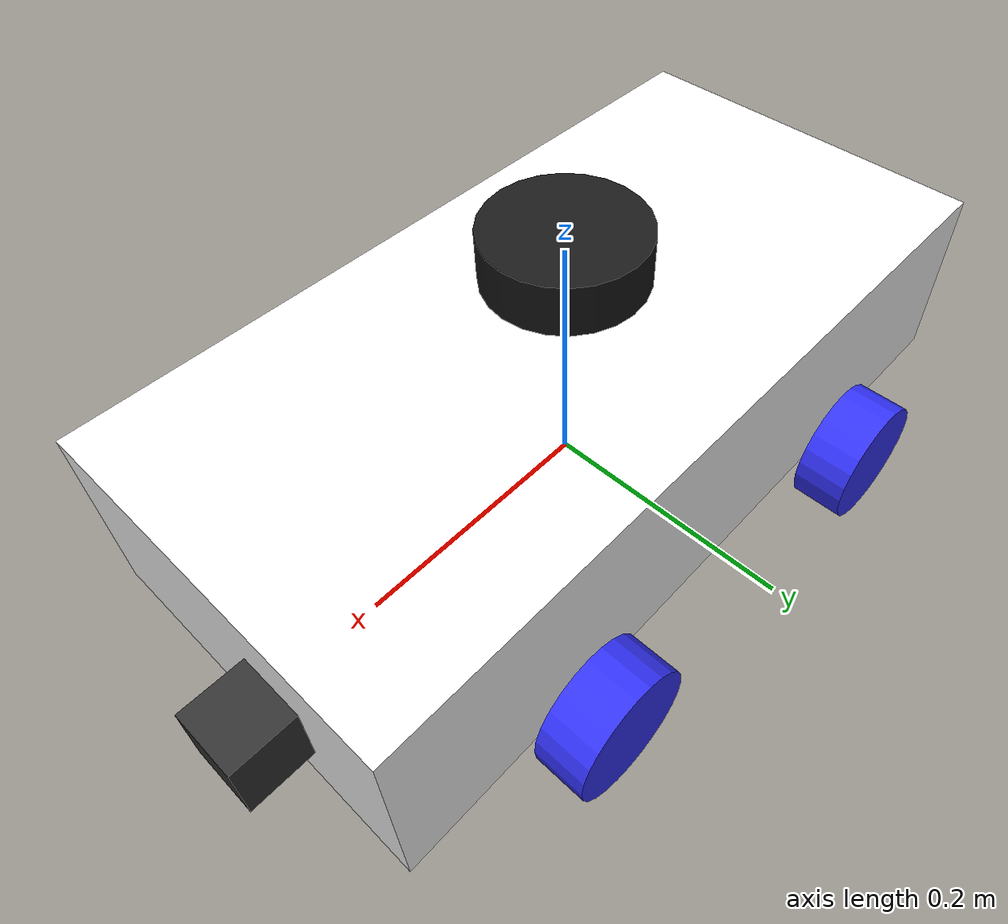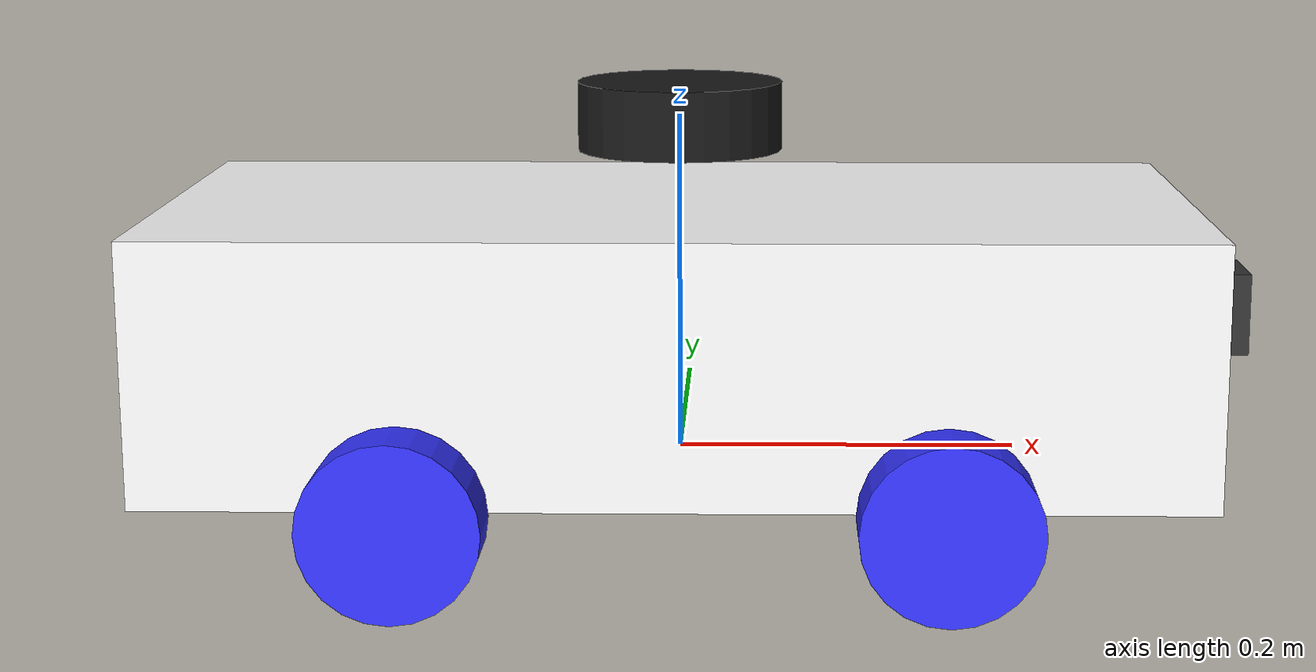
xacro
<?xml version="1.0"?>
<robot xmlns:xacro="http://www.ros.org/wiki/xacro" name="$(arg name)">

    <xacro:include filename="$(find swarm_4df)/urdf/inertial.urdf.xacro" />
    <xacro:include filename="$(find swarm_4df)/urdf/basicmodel.urdf.xacro" />
    <xacro:include filename="$(find swarm_4df)/urdf/gazebo.urdf.xacro" />
    <xacro:include filename="$(find swarm_4df)/urdf/lidar.urdf.xacro" />
    <xacro:include filename="$(find swarm_4df)/urdf/IMU.urdf.xacro" />
    <xacro:include filename="$(find swarm_4df)/urdf/camera.urdf.xacro" />

    <xacro:arg name="name" default="car"/>
    <xacro:arg name="prefix" default="" />

    <xacro:car_urdf   prefix="$(arg prefix)" />
    <xacro:car_gazebo prefix="$(arg prefix)" />
   <xacro:car_lidar  prefix="$(arg prefix)" />
   <xacro:car_imu    prefix="$(arg prefix)"/>
 <xacro:car_camera  prefix="$(arg prefix)" />
</robot>

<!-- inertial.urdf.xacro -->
<robot xmlns:xacro="http://www.ros.org/wiki/xacro" >

    <!-- Specify some standard inertial calculations https://en.wikipedia.org/wiki/List_of_moments_of_inertia -->
    <!-- These make use of xacro's mathematical functionality -->
    <!-- No per-robot prefix needed here: inertia is a property of the link's
         geometry, not of its name or namespace. -->

    <xacro:macro name="inertial_sphere" params="mass radius *origin">
        <inertial>
            <xacro:insert_block name="origin"/>
            <mass value="${mass}" />
            <inertia ixx="${(2/5) * mass * (radius*radius)}" ixy="0.0" ixz="0.0"
                    iyy="${(2/5) * mass * (radius*radius)}" iyz="0.0"
                    izz="${(2/5) * mass * (radius*radius)}" />
        </inertial>
    </xacro:macro>

    <xacro:macro name="inertial_box" params="mass x y z *origin">
        <inertial>
            <xacro:insert_block name="origin"/>
            <mass value="${mass}" />
            <inertia ixx="${(1/12) * mass * (y*y+z*z)}" ixy="0.0" ixz="0.0"
                    iyy="${(1/12) * mass * (x*x+z*z)}" iyz="0.0"
                    izz="${(1/12) * mass * (x*x+y*y)}" />
        </inertial>
    </xacro:macro>

    <xacro:macro name="inertial_cylinder" params="mass length radius *origin">
        <inertial>
            <xacro:insert_block name="origin"/>
            <mass value="${mass}" />
            <inertia ixx="${(1/12) * mass * (3*radius*radius + length*length)}" ixy="0.0" ixz="0.0"
                    iyy="${(1/12) * mass * (3*radius*radius + length*length)}" iyz="0.0"
                    izz="${(1/2) * mass * (radius*radius)}" />
        </inertial>
    </xacro:macro>

</robot>

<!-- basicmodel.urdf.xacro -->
<robot xmlns:xacro="http://www.ros.org/wiki/xacro" >

    <material name="white">
        <color rgba="1 1 1 1" />
    </material>
    <material name="orange">
        <color rgba="1 0.3 0.1 1"/>
    </material>
    <material name="blue">
        <color rgba="0.2 0.2 1 1"/>
    </material>
    <material name="black">
        <color rgba="0 0 0 1"/>
    </material>
    <material name="dark_grey">
        <color rgba="0.2 0.2 0.2 1.0"/>
    </material>

    <xacro:property name="pi" value="3.1415926535897931"/>

    <xacro:macro name="car_urdf" params="prefix">

        <link name="base_link"></link>

        <joint name="chassis_joint" type="fixed">
            <parent link="base_link"/>
            <child link="chassis"/>
            <origin xyz="-0.3 0 0"/>
        </joint>

        <link name="chassis">
            <visual>
                <origin xyz="0.3 0 0.075"/>
                <geometry>
                    <box size="0.6 0.3 0.15"/>
                </geometry>
                <material name="white"/>
            </visual>
            <collision>
                <origin xyz="0.3 0 0.075"/>
                <geometry>
                    <box size="0.6 0.3 0.15"/>
                </geometry>
            </collision>
            <xacro:inertial_box mass="0.5" x="0.6" y="0.3" z="0.15">
                <origin xyz="0.3 0 0.075" rpy="0 0 0"/>
            </xacro:inertial_box>
        </link>

        <joint name="left_wheel_back_joint" type="continuous">
            <parent link="base_link"/>
            <child link="left_wheel_back"/>
            <origin xyz="-0.15 0.175 0" rpy="-${pi/2} 0 0" />
            <axis xyz="0 0 1"/>
        </joint>

        <link name="left_wheel_back">
            <visual>
                <geometry>
                    <cylinder radius="0.05" length="0.04"/>
                </geometry>
                <material name="blue"/>
            </visual>
            <collision>
                <geometry>
                    <cylinder radius="0.05" length="0.04"/>
                </geometry>
            </collision>
            <xacro:inertial_cylinder mass="0.1" length="0.04" radius="0.05">
                <origin xyz="0 0 0" rpy="0 0 0"/>
            </xacro:inertial_cylinder>
        </link>

        <joint name="right_wheel_back_joint" type="continuous">
            <parent link="base_link"/>
            <child link="right_wheel_back"/>
            <origin xyz="-0.15 -0.175 0" rpy="${pi/2} 0 0" />
            <axis xyz="0 0 -1"/>
        </joint>

        <link name="right_wheel_back">
            <visual>
                <geometry>
                    <cylinder radius="0.05" length="0.04"/>
                </geometry>
                <material name="blue"/>
            </visual>
            <collision>
                <geometry>
                    <cylinder radius="0.05" length="0.04"/>
                </geometry>
            </collision>
            <xacro:inertial_cylinder mass="0.1" length="0.04" radius="0.05">
                <origin xyz="0 0 0" rpy="0 0 0"/>
            </xacro:inertial_cylinder>
        </link>

        <joint name="left_wheel_front_joint" type="continuous">
            <parent link="base_link"/>
            <child link="left_wheel_front"/>
            <origin xyz="0.15 0.175 0" rpy="-${pi/2} 0 0" />
            <axis xyz="0 0 1"/>
        </joint>

        <link name="left_wheel_front">
            <visual>
                <geometry>
                    <cylinder radius="0.05" length="0.04"/>
                </geometry>
                <material name="blue"/>
            </visual>
            <collision>
                <geometry>
                    <cylinder radius="0.05" length="0.04"/>
                </geometry>
            </collision>
            <xacro:inertial_cylinder mass="0.1" length="0.04" radius="0.05">
                <origin xyz="0 0 0" rpy="0 0 0"/>
            </xacro:inertial_cylinder>
        </link>

        <joint name="right_wheel_front_joint" type="continuous">
            <parent link="base_link"/>
            <child link="right_wheel_front"/>
            <origin xyz="0.15 -0.175 0" rpy="${pi/2} 0 0" />
            <axis xyz="0 0 -1"/>
        </joint>

        <link name="right_wheel_front">
            <visual>
                <geometry>
                    <cylinder radius="0.05" length="0.04"/>
                </geometry>
                <material name="blue"/>
            </visual>
            <collision>
                <geometry>
                    <cylinder radius="0.05" length="0.04"/>
                </geometry>
            </collision>
            <xacro:inertial_cylinder mass="0.1" length="0.04" radius="0.05">
                <origin xyz="0 0 0" rpy="0 0 0"/>
            </xacro:inertial_cylinder>
        </link>

    </xacro:macro>

</robot>

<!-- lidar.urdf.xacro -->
<robot xmlns:xacro="http://www.ros.org/wiki/xacro" >

    <xacro:macro name="car_lidar" params="prefix">

        <link name="lidar_link">
            <visual>
                <geometry>
                    <cylinder radius="0.06" length="0.04"/>
                </geometry>
                <material name="black">
                    <color rgba="0.1 0.1 0.1 1.0"/>
                </material>
            </visual>
            <collision>
                <geometry>
                    <cylinder radius="0.06" length="0.04"/>
                </geometry>
            </collision>
            <inertial>
                <mass value="0.1"/>
                <origin xyz="0 0 0"/>
                <inertia ixx="0.000025" ixy="0" ixz="0" iyy="0.000025" iyz="0" izz="0.000025"/>
            </inertial>
        </link>

        <joint name="lidar_joint" type="fixed">
            <parent link="base_link"/>
            <child link="lidar_link"/>
            <origin xyz="0 0 0.2" rpy="0 0 0"/>
        </joint>

        <gazebo reference="lidar_joint">
            <disableFixedJointLumping>true</disableFixedJointLumping>
        </gazebo>

        <gazebo reference="lidar_link">
            <sensor name="lidar" type="gpu_lidar">
                <pose>0 0 0 0 0 0</pose>
                <update_rate>10</update_rate>
                <gz_frame_id>${prefix}/lidar_link</gz_frame_id>
                <lidar>
                    <scan>
                        <horizontal>
                            <samples>360</samples>
                            <resolution>1</resolution>
                            <min_angle>-3.14159</min_angle>
                            <max_angle>3.14159</max_angle>
                        </horizontal>
                    </scan>
                    <range>
                        <min>0.15</min>
                        <max>12.0</max>
                        <resolution>0.01</resolution>
                    </range>
                    <noise>
                        <type>gaussian</type>
                        <mean>0.0</mean>
                        <stddev>0.01</stddev>
                    </noise>
                </lidar>
                <always_on>true</always_on>
                <visualize>false</visualize>
            </sensor>
        </gazebo>

    </xacro:macro>

</robot>

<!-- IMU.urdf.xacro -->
<robot xmlns:xacro="http://www.ros.org/wiki/xacro" >

    <xacro:macro name="car_imu" params="prefix">

        <link name="imu_link">
            <inertial>
                <mass value="0.01"/>
                <origin xyz="0 0 0"/>
                <inertia ixx="0.0000001" ixy="0" ixz="0" iyy="0.0000001" iyz="0" izz="0.0000001"/>
            </inertial>
        </link>

        <joint name="imu_joint" type="fixed">
            <parent link="base_link"/>
            <child link="imu_link"/>
            <origin xyz="0 0 0.1" rpy="0 0 0"/>
        </joint>
         <gazebo reference="imu_joint">
            <disableFixedJointLumping>true</disableFixedJointLumping>
        </gazebo>

        <gazebo reference="imu_link">
            <sensor name="imu" type="imu">
                <always_on>true</always_on>
                <update_rate>100</update_rate>
                <gz_frame_id>${prefix}/imu_link</gz_frame_id>
            </sensor>
        </gazebo>

    </xacro:macro>

</robot>

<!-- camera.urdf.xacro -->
<robot xmlns:xacro="http://www.ros.org/wiki/xacro" >

    <xacro:macro name="car_camera" params="prefix">

        <link name="camera_link">
            <visual>
                <geometry>
                    <box size="0.05 0.05 0.05"/>
                </geometry>
                <material name="dark_grey">
                    <color rgba="0.2 0.2 0.2 1.0"/>
                </material>
            </visual>
            <collision>
                <geometry>
                    <box size="0.05 0.05 0.05"/>
                </geometry>
            </collision>
            <inertial>
                <mass value="0.05"/>
                <origin xyz=" 0 0 0"/>
                <inertia ixx="0.000001" ixy="0" ixz="0"
                         iyy="0.000001" iyz="0"
                         izz="0.000001"/>
            </inertial>
        </link>

        <link name="camera_optical_link"/>

        <joint name="camera_joint" type="fixed">
            <parent link="base_link"/>
            <child link="camera_link"/>
            <origin xyz="0.32 .051   0.075" rpy="0 0 0"/>
        </joint>

        <gazebo reference="camera_joint">
            <disableFixedJointLumping>true</disableFixedJointLumping>
        </gazebo>

        <joint name="camera_optical_joint" type="fixed">
            <parent link="camera_link"/>
            <child link="camera_optical_link"/>
            <origin xyz="0 0 0" rpy="0 0 0"/>
        </joint>

        <gazebo reference="camera_optical_joint">
            <disableFixedJointLumping>true</disableFixedJointLumping>
        </gazebo>

        <gazebo reference="camera_link">
            <sensor name="camera" type="camera">
                <pose>0 0 0 0 0 0</pose>
                <update_rate>30</update_rate>
                <gz_frame_id>${prefix}/camera_optical_link</gz_frame_id>
                <camera>
                    <horizontal_fov>1.047</horizontal_fov>
                    <image>
                        <width>640</width>
                        <height>480</height>
                        <format>R8G8B8</format>
                    </image>
                    <clip>
                        <near>0.05</near>
                        <far>100.0</far>
                    </clip>
                    <noise>
                        <type>gaussian</type>
                        <mean>0.0</mean>
                        <stddev>0.007</stddev>
                    </noise>
                </camera>
                <always_on>true</always_on>
                <visualize>true</visualize>
            </sensor>
        </gazebo>

    </xacro:macro>

</robot>
